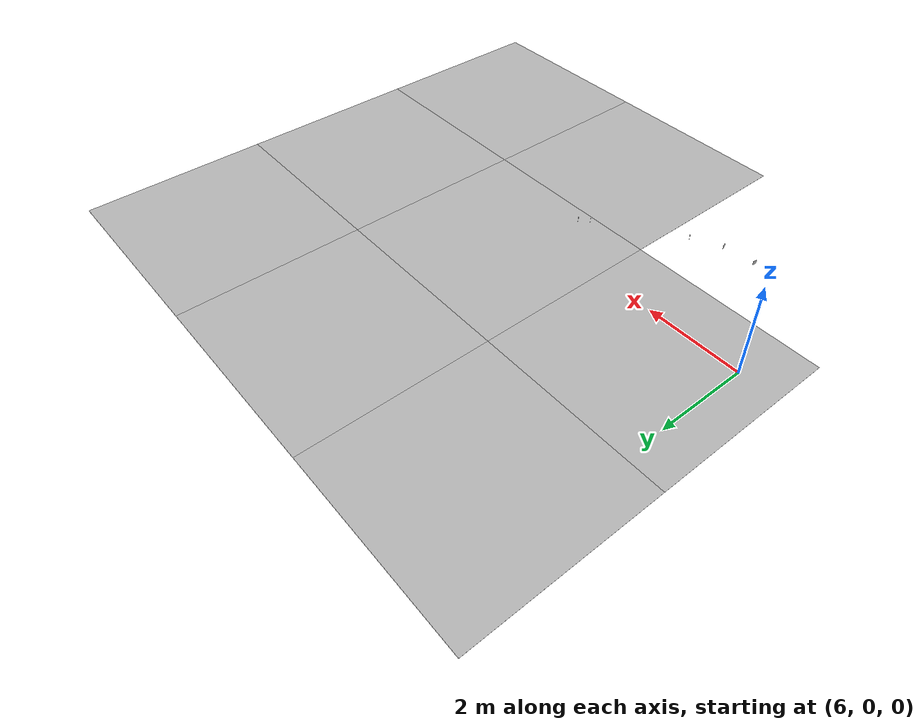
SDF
<sdf version="1.6">
 <world name="default">
  <model name="Tile/2-1">
   <static>1</static>
   <link name="link">
    <collision name="collision">
     <geometry><plane><normal>0 0 1</normal><size>4.096 4.096</size></plane></geometry>
     <surface><friction><ode><mu>100</mu><mu2>50</mu2></ode></friction></surface>
    </collision>
    <visual name="visual">
     <cast_shadows>0</cast_shadows>
     <geometry><plane><normal>0 0 1</normal><size>4.096 4.096</size></plane></geometry>
     <material>
      <script>
       <uri>file://materials/scripts</uri>
       <uri>file://materials/textures</uri>
       <name>Tile/cc95dc856faef454fb8a63e7bb9312f0d1dfc098e2d3f519a962ceb77c26229d</name>
      </script>
     </material>
    </visual>
   </link>
   <pose>7.24 0.8440161318898713 0 0 -0 0</pose>
  </model>
  <model name="Tile/2-2">
   <static>1</static>
   <link name="link">
    <collision name="collision">
     <geometry><plane><normal>0 0 1</normal><size>4.096 4.096</size></plane></geometry>
     <surface><friction><ode><mu>100</mu><mu2>50</mu2></ode></friction></surface>
    </collision>
    <visual name="visual">
     <cast_shadows>0</cast_shadows>
     <geometry><plane><normal>0 0 1</normal><size>4.096 4.096</size></plane></geometry>
     <material>
      <script>
       <uri>file://materials/scripts</uri>
       <uri>file://materials/textures</uri>
       <name>Tile/5eab350b8220ac9944dbdfa4ac3288c7c17e24c3bf5df0dfcf6173d64dae00a1</name>
      </script>
     </material>
    </visual>
   </link>
   <pose>7.24 4.940016131889871 0 0 -0 0</pose>
  </model>
  <model name="Tile/3-0">
   <static>1</static>
   <link name="link">
    <collision name="collision">
     <geometry><plane><normal>0 0 1</normal><size>4.096 4.096</size></plane></geometry>
     <surface><friction><ode><mu>100</mu><mu2>50</mu2></ode></friction></surface>
    </collision>
    <visual name="visual">
     <cast_shadows>0</cast_shadows>
     <geometry><plane><normal>0 0 1</normal><size>4.096 4.096</size></plane></geometry>
     <material>
      <script>
       <uri>file://materials/scripts</uri>
       <uri>file://materials/textures</uri>
       <name>Tile/633cffdfb34a195dc89f52758e2c1bf73e088ef99cc970f6992f9a89182724ec</name>
      </script>
     </material>
    </visual>
   </link>
   <pose>11.336 -3.2519838681101287 0 0 -0 0</pose>
  </model>
  <model name="Tile/3-1">
   <static>1</static>
   <link name="link">
    <collision name="collision">
     <geometry><plane><normal>0 0 1</normal><size>4.096 4.096</size></plane></geometry>
     <surface><friction><ode><mu>100</mu><mu2>50</mu2></ode></friction></surface>
    </collision>
    <visual name="visual">
     <cast_shadows>0</cast_shadows>
     <geometry><plane><normal>0 0 1</normal><size>4.096 4.096</size></plane></geometry>
     <material>
      <script>
       <uri>file://materials/scripts</uri>
       <uri>file://materials/textures</uri>
       <name>Tile/2f6c4bac7e2a53238497439387e080d4bac459fc3c7e65ff5a0ebabae7a624e4</name>
      </script>
     </material>
    </visual>
   </link>
   <pose>11.336 0.8440161318898713 0 0 -0 0</pose>
  </model>
  <model name="Tile/3-2">
   <static>1</static>
   <link name="link">
    <collision name="collision">
     <geometry><plane><normal>0 0 1</normal><size>4.096 4.096</size></plane></geometry>
     <surface><friction><ode><mu>100</mu><mu2>50</mu2></ode></friction></surface>
    </collision>
    <visual name="visual">
     <cast_shadows>0</cast_shadows>
     <geometry><plane><normal>0 0 1</normal><size>4.096 4.096</size></plane></geometry>
     <material>
      <script>
       <uri>file://materials/scripts</uri>
       <uri>file://materials/textures</uri>
       <name>Tile/5eab350b8220ac9944dbdfa4ac3288c7c17e24c3bf5df0dfcf6173d64dae00a1</name>
      </script>
     </material>
    </visual>
   </link>
   <pose>11.336 4.940016131889871 0 0 -0 0</pose>
  </model>
  <model name="Tile/4-0">
   <static>1</static>
   <link name="link">
    <collision name="collision">
     <geometry><plane><normal>0 0 1</normal><size>4.096 4.096</size></plane></geometry>
     <surface><friction><ode><mu>100</mu><mu2>50</mu2></ode></friction></surface>
    </collision>
    <visual name="visual">
     <cast_shadows>0</cast_shadows>
     <geometry><plane><normal>0 0 1</normal><size>4.096 4.096</size></plane></geometry>
     <material>
      <script>
       <uri>file://materials/scripts</uri>
       <uri>file://materials/textures</uri>
       <name>Tile/5eab350b8220ac9944dbdfa4ac3288c7c17e24c3bf5df0dfcf6173d64dae00a1</name>
      </script>
     </material>
    </visual>
   </link>
   <pose>15.431999999999999 -3.2519838681101287 0 0 -0 0</pose>
  </model>
  <model name="Tile/4-1">
   <static>1</static>
   <link name="link">
    <collision name="collision">
     <geometry><plane><normal>0 0 1</normal><size>4.096 4.096</size></plane></geometry>
     <surface><friction><ode><mu>100</mu><mu2>50</mu2></ode></friction></surface>
    </collision>
    <visual name="visual">
     <cast_shadows>0</cast_shadows>
     <geometry><plane><normal>0 0 1</normal><size>4.096 4.096</size></plane></geometry>
     <material>
      <script>
       <uri>file://materials/scripts</uri>
       <uri>file://materials/textures</uri>
       <name>Tile/5eab350b8220ac9944dbdfa4ac3288c7c17e24c3bf5df0dfcf6173d64dae00a1</name>
      </script>
     </material>
    </visual>
   </link>
   <pose>15.431999999999999 0.8440161318898713 0 0 -0 0</pose>
  </model>
  <model name="Tile/4-2">
   <static>1</static>
   <link name="link">
    <collision name="collision">
     <geometry><plane><normal>0 0 1</normal><size>4.096 4.096</size></plane></geometry>
     <surface><friction><ode><mu>100</mu><mu2>50</mu2></ode></friction></surface>
    </collision>
    <visual name="visual">
     <cast_shadows>0</cast_shadows>
     <geometry><plane><normal>0 0 1</normal><size>4.096 4.096</size></plane></geometry>
     <material>
      <script>
       <uri>file://materials/scripts</uri>
       <uri>file://materials/textures</uri>
       <name>Tile/5eab350b8220ac9944dbdfa4ac3288c7c17e24c3bf5df0dfcf6173d64dae00a1</name>
      </script>
     </material>
    </visual>
   </link>
   <pose>15.431999999999999 4.940016131889871 0 0 -0 0</pose>
  </model>
  <model name="Sign/-37">
   <static>1</static>
   <link name="link">
    <visual name="visual">
     <cast_shadows>0</cast_shadows>
     <geometry><plane><normal>0 0 1</normal><size>0.1 0.1</size></plane></geometry>
     <material>
      <script>
       <uri>file://materials/scripts</uri>
       <uri>file://materials/textures</uri>
       <name>Sign/stvo-625-10</name>
      </script>
     </material>
    </visual>
   </link>
   <pose>7.498791647728777 -2.4421449426912685 0.2 1.5707963267948966 0 4.625122517784973</pose>
  </model>
  <model name="Sign/-42">
   <static>1</static>
   <link name="link">
    <visual name="visual">
     <cast_shadows>0</cast_shadows>
     <geometry><plane><normal>0 0 1</normal><size>0.1 0.1</size></plane></geometry>
     <material>
      <script>
       <uri>file://materials/scripts</uri>
       <uri>file://materials/textures</uri>
       <name>Sign/stvo-625-10</name>
      </script>
     </material>
    </visual>
   </link>
   <pose>8.18325308665853 -2.3822623261642732 0.2 1.5707963267948966 0 4.974188368183839</pose>
  </model>
  <model name="Sign/-47">
   <static>1</static>
   <link name="link">
    <visual name="visual">
     <cast_shadows>0</cast_shadows>
     <geometry><plane><normal>0 0 1</normal><size>0.1 0.1</size></plane></geometry>
     <material>
      <script>
       <uri>file://materials/scripts</uri>
       <uri>file://materials/textures</uri>
       <name>Sign/stvo-625-10</name>
      </script>
     </material>
    </visual>
   </link>
   <pose>8.805955388946044 -2.0918914738568564 0.2 1.5707963267948966 0 5.323254218582705</pose>
  </model>
  <model name="Sign/-60">
   <static>1</static>
   <link name="link">
    <visual name="visual">
     <cast_shadows>0</cast_shadows>
     <geometry><plane><normal>0 0 1</normal><size>0.1 0.1</size></plane></geometry>
     <material>
      <script>
       <uri>file://materials/scripts</uri>
       <uri>file://materials/textures</uri>
       <name>Sign/stvo-209-10</name>
      </script>
     </material>
    </visual>
   </link>
   <pose>10.62446442700017 -0.7575190076707973 0.2 1.5707963267948966 0 5.323254218582705</pose>
  </model>
  <model name="Sign/-61">
   <static>1</static>
   <link name="link">
    <visual name="visual">
     <cast_shadows>0</cast_shadows>
     <geometry><plane><normal>0 0 1</normal><size>0.1 0.1</size></plane></geometry>
     <material>
      <script>
       <uri>file://materials/scripts</uri>
       <uri>file://materials/textures</uri>
       <name>Sign/stvo-205</name>
      </script>
     </material>
    </visual>
   </link>
   <pose>10.41967641592792 -0.9009131167585588 0.2 1.5707963267948966 0 5.323254218582705</pose>
  </model>
 </world>
</sdf>
